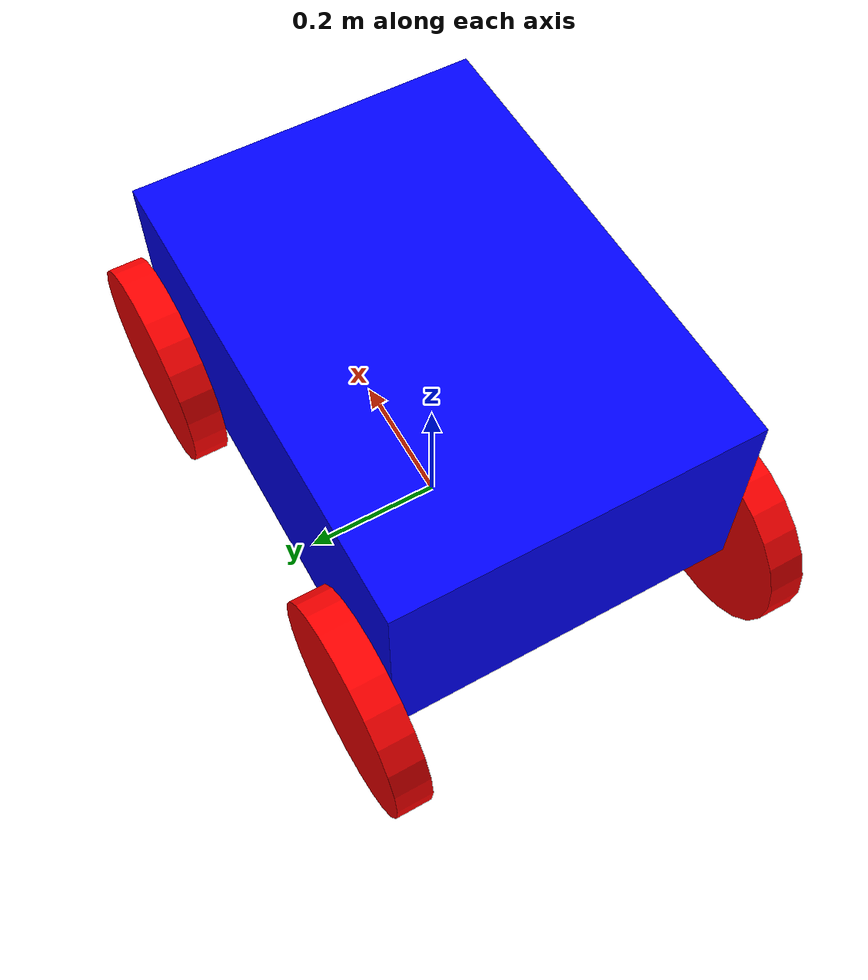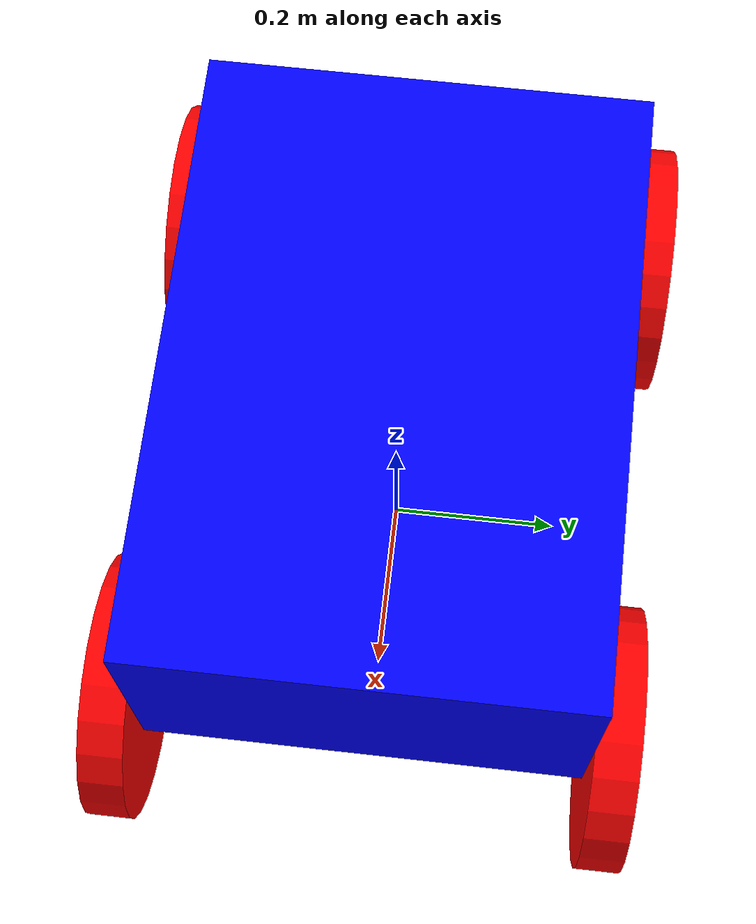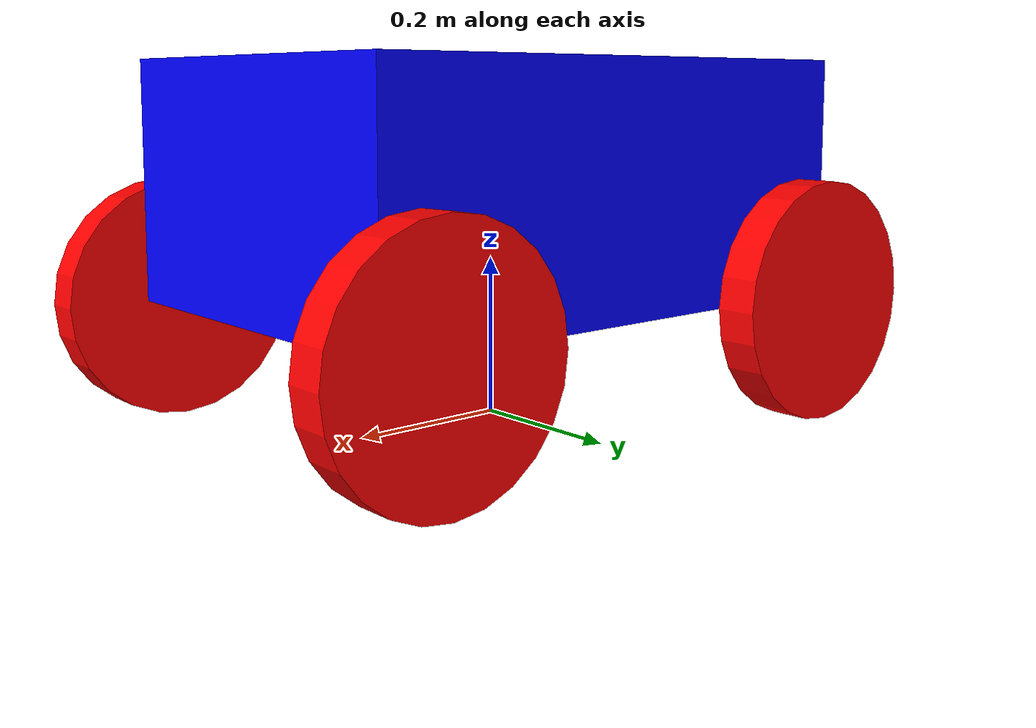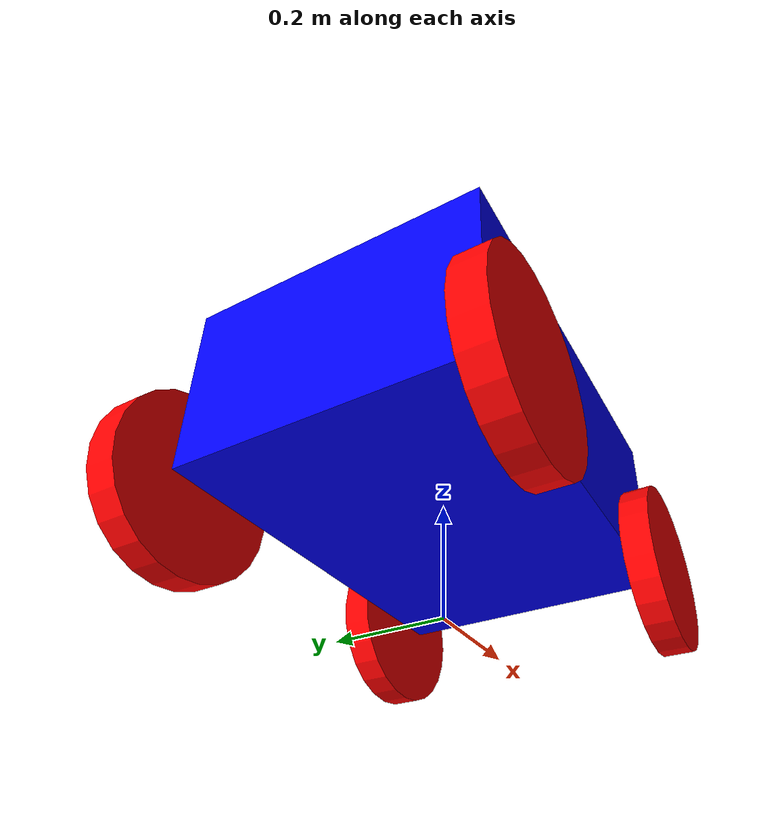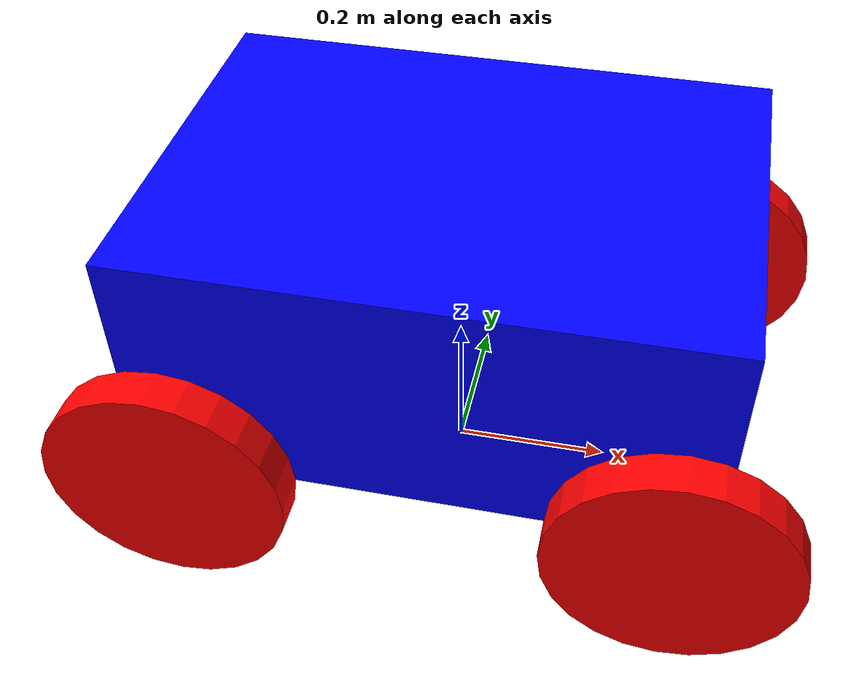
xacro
<?xml version="1.0"?>
<robot name="four_wheel_car">

  <link name="base_link"/>

  <!-- for the Body  -->
  <link name="body_link">
    <inertial>
      <mass value="5.0"/>
      <origin xyz="0 0 0"/>
      <inertia ixx="0.2" ixy="0.0" ixz="0.0" iyy="0.2" iyz="0.0" izz="0.2"/>
    </inertial>
    <visual>
      <geometry>
        <box size="0.7 0.5 0.3"/>
      </geometry>
      <material name="blue">
        <color rgba="0 0 1 1"/>
      </material>
    </visual>
    <collision>
      <geometry>
        <box size="0.7 0.5 0.3"/>
      </geometry>
    </collision>
  </link>

  <!-- for the Wheels -->
  <link name="wheel_fr">
    <inertial>
      <mass value="1.0"/>
      <origin xyz="0 0 0"/>
      <inertia ixx="0.02" ixy="0.0" ixz="0.0" iyy="0.02" iyz="0.0" izz="0.02"/>
    </inertial>
    <visual>
      <geometry>
        <cylinder length="0.05" radius="0.15"/>
      </geometry>
      <material name="red">
        <color rgba="1 0 0 1"/>
      </material>
    </visual>
    <collision>
      <geometry>
        <cylinder length="0.05" radius="0.15"/>
      </geometry>
    </collision>
  </link>

  <!-- Additional Wheel Links -->

  <link name="wheel_fl">
    <inertial>
      <mass value="1.0"/>
      <origin xyz="0 0 0"/>
      <inertia ixx="0.02" ixy="0.0" ixz="0.0" iyy="0.02" iyz="0.0" izz="0.02"/>
    </inertial>
    <visual>
      <geometry>
        <cylinder length="0.05" radius="0.15"/>
      </geometry>
      <material name="red">
        <color rgba="1 0 0 1"/>
      </material>
    </visual>
    <collision>
      <geometry>
        <cylinder length="0.05" radius="0.15"/>
      </geometry>
    </collision>
  </link>

  <link name="wheel_rr">
    <inertial>
      <mass value="1.0"/>
      <origin xyz="0 0 0"/>
      <inertia ixx="0.02" ixy="0.0" ixz="0.0" iyy="0.02" iyz="0.0" izz="0.02"/>
    </inertial>
    <visual>
      <geometry>
        <cylinder length="0.05" radius="0.15"/>
      </geometry>
     <material name="red">
        <color rgba="1 0 0 1"/>
      </material>
    </visual>
    <collision>
      <geometry>
        <cylinder length="0.05" radius="0.15"/>
      </geometry>
    </collision>
  </link>

  <link name="wheel_rl">
    <inertial>
      <mass value="1.0"/>
      <origin xyz="0 0 0"/>
      <inertia ixx="0.02" ixy="0.0" ixz="0.0" iyy="0.02" iyz="0.0" izz="0.02"/>
    </inertial>
    <visual>
      <geometry>
        <cylinder length="0.05" radius="0.15"/>
      </geometry>
     <material name="red">
        <color rgba="1 0 0 1"/>
      </material>
    </visual>
    <collision>
      <geometry>
        <cylinder length="0.05" radius="0.15"/>
      </geometry>
    </collision>
  </link>

  <!-- for the Joints  -->
  <joint name="joint_fr" type="continuous">
    <parent link="base_link"/>
    <child link="wheel_fr"/>
    <origin xyz = "0.3 -0.275 0.15" rpy="${pi/2} 0 0"/>
        <axis xyz = "0 0 -1"/>
  </joint>

  <!-- some additional Joints -->
  <joint name="joint_fl" type="continuous">
    <parent link="base_link"/>
    <child link="wheel_fl"/>
    <origin xyz = "0.3 0.275 0.15" rpy="-${pi/2} 0 0"/>
        <axis xyz = "0 0 1"/>
  </joint>

  <joint name="body_joint" type="fixed">
    <parent link="base_link"/>
    <child link="body_link"/>
    <origin xyz = "0 0 0.3" rpy="0 0 0"/>
        <axis xyz = "0 0 0"/>
  </joint>

  <joint name="joint_rr" type="continuous">
    <parent link="base_link"/>
    <child link="wheel_rr"/>
    <origin xyz = "-0.3 -0.275 0.15" rpy="${pi/2} 0 0"/>
        <axis xyz = "0 0 -1"/>
  </joint>

  <joint name="joint_rl" type="continuous">
    <parent link="base_link"/>
    <child link="wheel_rl"/>
    <origin xyz = "-0.3 0.275 0.15" rpy="-${pi/2} 0 0"/>
        <axis xyz = "0 0 1"/>
  </joint>

<!-- Gazebo -->
    <gazebo reference = "wheel_rl">
        <material> Gazebo/Blue </material>
    </gazebo>

    <gazebo reference = "wheel_fr">
        <material> Gazebo/Blue </material>
    </gazebo>

    <gazebo reference = "wheel_fl">
        <material> Gazebo/Blue </material>
    </gazebo>

    <gazebo reference = "wheel_rr">
        <material> Gazebo/Blue </material>
    </gazebo>

    <gazebo reference = "body_link">
        <material> Gazebo/Red </material>
    </gazebo>

</robot>
